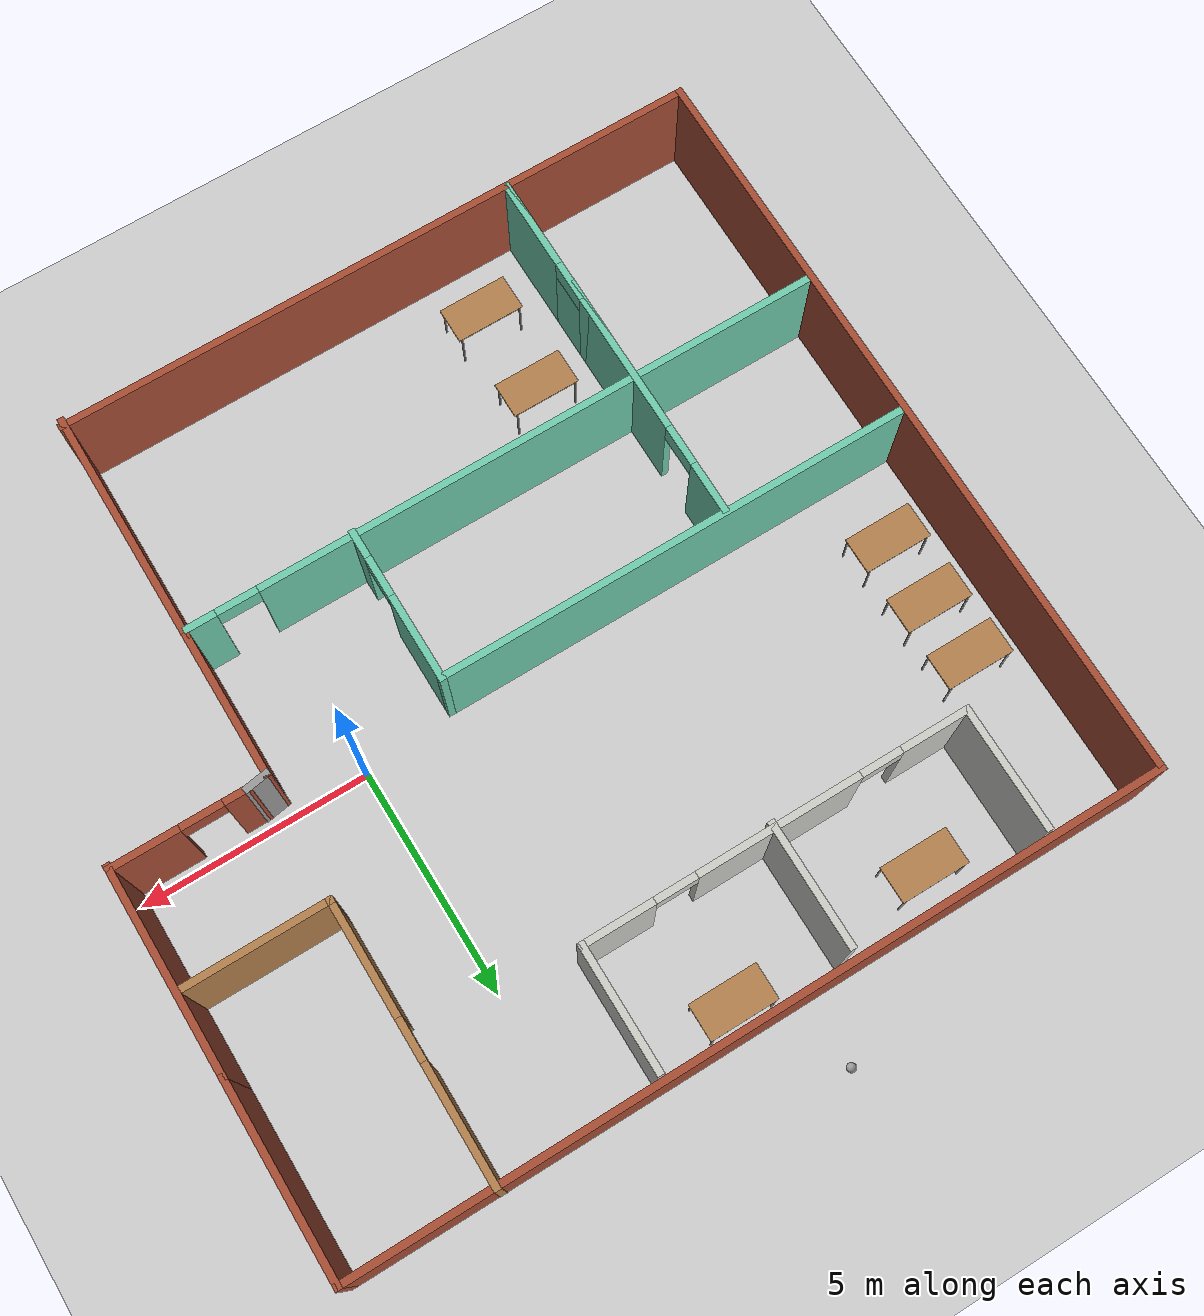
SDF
<sdf version="1.6">
 <world name="default">
  <light name="sun" type="directional">
   <pose>0 0 10 0 -0 0</pose>
   <diffuse>0.8 0.8 0.8 1</diffuse>
   <specular>0.2 0.2 0.2 1</specular>
   <attenuation>
    <range>1000</range>
    <constant>0.9</constant>
    <linear>0.01</linear>
    <quadratic>0.001</quadratic>
   </attenuation>
   <direction>-0.5 0.1 -0.9</direction>
  </light>
  <model name="ground_plane">
   <static>1</static>
   <link name="link">
    <collision name="collision">
     <geometry><plane><normal>0 0 1</normal><size>100 100</size></plane></geometry>
     <surface>
      <contact><collide_bitmask>65535</collide_bitmask></contact>
      <friction><ode><mu>100</mu><mu2>50</mu2></ode></friction>
     </surface>
    </collision>
    <visual name="visual">
     <cast_shadows>0</cast_shadows>
     <geometry><plane><normal>0 0 1</normal><size>100 100</size></plane></geometry>
     <material>
      <script><uri>file://media/materials/scripts/gazebo.material</uri><name>Gazebo/Grey</name></script>
     </material>
    </visual>
   </link>
  </model>
  <gravity>0 0 -9.8</gravity>
  <magnetic_field>6e-06 2.3e-05 -4.2e-05</magnetic_field>
  <atmosphere type="adiabatic"/>
  <physics name="default_physics" default="0" type="ode">
   <max_step_size>0.001</max_step_size>
   <real_time_factor>1</real_time_factor>
   <real_time_update_rate>1000</real_time_update_rate>
  </physics>
  <scene><ambient>0.4 0.4 0.4 1</ambient><background>0.7 0.7 0.7 1</background><shadows>1</shadows></scene>
  <spherical_coordinates>
   <surface_model>EARTH_WGS84</surface_model>
   <latitude_deg>0</latitude_deg>
   <longitude_deg>0</longitude_deg>
   <elevation>0</elevation>
   <heading_deg>0</heading_deg>
  </spherical_coordinates>
  <model name="My_building">
   <pose>-3.765 -0.202616 0 0 -0 0</pose>
   <link name="Wall_0">
    <pose>7.25 -0.08333 0 0 -0 0</pose>
    <visual name="Wall_0_Visual_0">
     <pose>-1.21198 0 1.25 0 -0 0</pose>
     <geometry><box><size>0.57604 0.15 2.5</size></box></geometry>
     <material>
      <script><uri>file://media/materials/scripts/gazebo.material</uri><name>Gazebo/Bricks</name></script>
      <ambient>1 1 1 1</ambient>
     </material>
     <meta><layer>0</layer></meta>
    </visual>
    <collision name="Wall_0_Collision_0">
     <geometry><box><size>0.57604 0.15 2.5</size></box></geometry>
     <pose>-1.21198 0 1.25 0 -0 0</pose>
    </collision>
    <visual name="Wall_0_Visual_1">
     <pose>0.73802 0 1.25 0 -0 0</pose>
     <geometry><box><size>1.52396 0.15 2.5</size></box></geometry>
     <material>
      <script><uri>file://media/materials/scripts/gazebo.material</uri><name>Gazebo/Bricks</name></script>
      <ambient>1 1 1 1</ambient>
     </material>
     <meta><layer>0</layer></meta>
    </visual>
    <collision name="Wall_0_Collision_1">
     <geometry><box><size>1.52396 0.15 2.5</size></box></geometry>
     <pose>0.73802 0 1.25 0 -0 0</pose>
    </collision>
    <visual name="Wall_0_Visual_2">
     <pose>-0.47396 0 2.25 0 -0 0</pose>
     <geometry><box><size>0.9 0.15 0.5</size></box></geometry>
     <material>
      <script><uri>file://media/materials/scripts/gazebo.material</uri><name>Gazebo/Bricks</name></script>
      <ambient>1 1 1 1</ambient>
     </material>
     <meta><layer>0</layer></meta>
    </visual>
    <collision name="Wall_0_Collision_2">
     <geometry><box><size>0.9 0.15 0.5</size></box></geometry>
     <pose>-0.47396 0 2.25 0 -0 0</pose>
    </collision>
   </link>
   <link name="Wall_10">
    <collision name="Wall_10_Collision">
     <geometry><box><size>3.25 0.15 2.5</size></box></geometry>
     <pose>0 0 1.25 0 -0 0</pose>
    </collision>
    <visual name="Wall_10_Visual">
     <pose>0 0 1.25 0 -0 0</pose>
     <geometry><box><size>3.25 0.15 2.5</size></box></geometry>
     <material>
      <script><uri>file://media/materials/scripts/gazebo.material</uri><name>Gazebo/Bricks</name></script>
      <ambient>1 1 1 1</ambient>
     </material>
     <meta><layer>0</layer></meta>
    </visual>
    <pose>5.39586 -1.70043 0 0 -0 1.5708</pose>
   </link>
   <link name="Wall_11">
    <collision name="Wall_11_Collision">
     <geometry><box><size>0.584358 0.15 2.5</size></box></geometry>
     <pose>0 0 1.25 0 -0 0</pose>
    </collision>
    <visual name="Wall_11_Visual">
     <pose>0 0 1.25 0 -0 0</pose>
     <geometry><box><size>0.584358 0.15 2.5</size></box></geometry>
     <material>
      <script><uri>file://media/materials/scripts/gazebo.material</uri><name>Gazebo/Grey</name></script>
      <ambient>1 1 1 1</ambient>
     </material>
     <meta><layer>0</layer></meta>
    </visual>
    <pose>5.61043 -0.116881 0 0 -0 0.155107</pose>
   </link>
   <link name="Wall_13">
    <pose>-1.60533 -3.36158 0 0 -0 0</pose>
    <visual name="Wall_13_Visual_0">
     <pose>-0.790462 0 1.25 0 -0 0</pose>
     <geometry><box><size>12.4191 0.15 2.5</size></box></geometry>
     <material>
      <script><uri>file://media/materials/scripts/gazebo.material</uri><name>Gazebo/Grey</name></script>
      <ambient>0.435294 0.796078 0.67451 1</ambient>
     </material>
     <meta><layer>0</layer></meta>
    </visual>
    <collision name="Wall_13_Collision_0">
     <geometry><box><size>12.4191 0.15 2.5</size></box></geometry>
     <pose>-0.790462 0 1.25 0 -0 0</pose>
    </collision>
    <visual name="Wall_13_Visual_1">
     <pose>6.65954 0 1.25 0 -0 0</pose>
     <geometry><box><size>0.680924 0.15 2.5</size></box></geometry>
     <material>
      <script><uri>file://media/materials/scripts/gazebo.material</uri><name>Gazebo/Grey</name></script>
      <ambient>0.435294 0.796078 0.67451 1</ambient>
     </material>
     <meta><layer>0</layer></meta>
    </visual>
    <collision name="Wall_13_Collision_1">
     <geometry><box><size>0.680924 0.15 2.5</size></box></geometry>
     <pose>6.65954 0 1.25 0 -0 0</pose>
    </collision>
    <visual name="Wall_13_Visual_2">
     <pose>5.86908 0 2.25 0 -0 0</pose>
     <geometry><box><size>0.9 0.15 0.5</size></box></geometry>
     <material>
      <script><uri>file://media/materials/scripts/gazebo.material</uri><name>Gazebo/Grey</name></script>
      <ambient>0.435294 0.796078 0.67451 1</ambient>
     </material>
     <meta><layer>0</layer></meta>
    </visual>
    <collision name="Wall_13_Collision_2">
     <geometry><box><size>0.9 0.15 0.5</size></box></geometry>
     <pose>5.86908 0 2.25 0 -0 0</pose>
    </collision>
   </link>
   <link name="Wall_15">
    <collision name="Wall_15_Collision">
     <geometry><box><size>10.5 0.15 2.5</size></box></geometry>
     <pose>0 0 1.25 0 -0 0</pose>
    </collision>
    <visual name="Wall_15_Visual">
     <pose>0 0 1.25 0 -0 0</pose>
     <geometry><box><size>10.5 0.15 2.5</size></box></geometry>
     <material>
      <script><uri>file://media/materials/scripts/gazebo.material</uri><name>Gazebo/Grey</name></script>
      <ambient>0.435294 0.796078 0.67451 1</ambient>
     </material>
     <meta><layer>0</layer></meta>
    </visual>
    <pose>-3.44837 -0.058384 0 0 -0 0</pose>
   </link>
   <link name="Wall_16">
    <pose>1.72662 -1.73338 0 0 0 -1.5708</pose>
    <visual name="Wall_16_Visual_0">
     <pose>-0.774402 0 1.25 0 -0 0</pose>
     <geometry><box><size>1.9512 0.15 2.5</size></box></geometry>
     <material>
      <script><uri>file://media/materials/scripts/gazebo.material</uri><name>Gazebo/Grey</name></script>
      <ambient>0.435294 0.796078 0.67451 1</ambient>
     </material>
     <meta><layer>0</layer></meta>
    </visual>
    <collision name="Wall_16_Collision_0">
     <geometry><box><size>1.9512 0.15 2.5</size></box></geometry>
     <pose>-0.774402 0 1.25 0 -0 0</pose>
    </collision>
    <visual name="Wall_16_Visual_1">
     <pose>1.4256 0 1.25 0 -0 0</pose>
     <geometry><box><size>0.648804 0.15 2.5</size></box></geometry>
     <material>
      <script><uri>file://media/materials/scripts/gazebo.material</uri><name>Gazebo/Grey</name></script>
      <ambient>0.435294 0.796078 0.67451 1</ambient>
     </material>
     <meta><layer>0</layer></meta>
    </visual>
    <collision name="Wall_16_Collision_1">
     <geometry><box><size>0.648804 0.15 2.5</size></box></geometry>
     <pose>1.4256 0 1.25 0 -0 0</pose>
    </collision>
    <visual name="Wall_16_Visual_2">
     <pose>0.651196 0 2.25 0 -0 0</pose>
     <geometry><box><size>0.9 0.15 0.5</size></box></geometry>
     <material>
      <script><uri>file://media/materials/scripts/gazebo.material</uri><name>Gazebo/Grey</name></script>
      <ambient>0.435294 0.796078 0.67451 1</ambient>
     </material>
     <meta><layer>0</layer></meta>
    </visual>
    <collision name="Wall_16_Collision_2">
     <geometry><box><size>0.9 0.15 0.5</size></box></geometry>
     <pose>0.651196 0 2.25 0 -0 0</pose>
    </collision>
   </link>
   <link name="Wall_18">
    <collision name="Wall_18_Collision">
     <geometry><box><size>3.25 0.15 2.5</size></box></geometry>
     <pose>0 0 1.25 0 -0 0</pose>
    </collision>
    <visual name="Wall_18_Visual">
     <pose>0 0 1.25 0 -0 0</pose>
     <geometry><box><size>3.25 0.15 2.5</size></box></geometry>
     <material>
      <script><uri>file://media/materials/scripts/gazebo.material</uri><name>Gazebo/Wood</name></script>
      <ambient>0.435294 0.796078 0.67451 1</ambient>
     </material>
     <meta><layer>0</layer></meta>
    </visual>
    <pose>7.087 2.50043 0 0 -0 3.14159</pose>
   </link>
   <link name="Wall_19">
    <pose>5.537 5.42543 0 0 -0 1.5708</pose>
    <visual name="Wall_19_Visual_0">
     <pose>-1.73631 0 1.25 0 -0 0</pose>
     <geometry><box><size>2.52738 0.15 2.5</size></box></geometry>
     <material>
      <script><uri>file://media/materials/scripts/gazebo.material</uri><name>Gazebo/Wood</name></script>
      <ambient>0.435294 0.796078 0.67451 1</ambient>
     </material>
     <meta><layer>0</layer></meta>
    </visual>
    <collision name="Wall_19_Collision_0">
     <geometry><box><size>2.52738 0.15 2.5</size></box></geometry>
     <pose>-1.73631 0 1.25 0 -0 0</pose>
    </collision>
    <visual name="Wall_19_Visual_1">
     <pose>1.71369 0 1.25 0 -0 0</pose>
     <geometry><box><size>2.57262 0.15 2.5</size></box></geometry>
     <material>
      <script><uri>file://media/materials/scripts/gazebo.material</uri><name>Gazebo/Wood</name></script>
      <ambient>0.435294 0.796078 0.67451 1</ambient>
     </material>
     <meta><layer>0</layer></meta>
    </visual>
    <collision name="Wall_19_Collision_1">
     <geometry><box><size>2.57262 0.15 2.5</size></box></geometry>
     <pose>1.71369 0 1.25 0 -0 0</pose>
    </collision>
    <visual name="Wall_19_Visual_2">
     <pose>-0.022624 0 2.25 0 -0 0</pose>
     <geometry><box><size>0.9 0.15 0.5</size></box></geometry>
     <material>
      <script><uri>file://media/materials/scripts/gazebo.material</uri><name>Gazebo/Wood</name></script>
      <ambient>0.435294 0.796078 0.67451 1</ambient>
     </material>
     <meta><layer>0</layer></meta>
    </visual>
    <collision name="Wall_19_Collision_2">
     <geometry><box><size>0.9 0.15 0.5</size></box></geometry>
     <pose>-0.022624 0 2.25 0 -0 0</pose>
    </collision>
   </link>
   <link name="Wall_2">
    <collision name="Wall_2_Collision">
     <geometry><box><size>4.52247 0.15 2.5</size></box></geometry>
     <pose>0 0 1.25 0 -0 0</pose>
    </collision>
    <visual name="Wall_2_Visual">
     <pose>0 0 1.25 0 -0 0</pose>
     <geometry><box><size>4.52247 0.15 2.5</size></box></geometry>
     <material>
      <script><uri>file://media/materials/scripts/gazebo.material</uri><name>Gazebo/Bricks</name></script>
      <ambient>0.435294 0.796078 0.67451 1</ambient>
     </material>
     <meta><layer>0</layer></meta>
    </visual>
    <pose>8.675 2.05638 0 0 -0 1.5708</pose>
   </link>
   <link name="Wall_22">
    <collision name="Wall_22_Collision">
     <geometry><box><size>2.75 0.15 2.5</size></box></geometry>
     <pose>0 0 1.25 0 -0 0</pose>
    </collision>
    <visual name="Wall_22_Visual">
     <pose>0 0 1.25 0 -0 0</pose>
     <geometry><box><size>2.75 0.15 2.5</size></box></geometry>
     <material>
      <script><uri>file://media/materials/scripts/gazebo.material</uri><name>Gazebo/CeilingTiled</name></script>
      <ambient>1 1 1 1</ambient>
     </material>
     <meta><layer>0</layer></meta>
    </visual>
    <pose>-6.25504 6.86233 0 0 0 -1.5708</pose>
   </link>
   <link name="Wall_23">
    <pose>-2.08004 5.56233 0 0 -0 0</pose>
    <visual name="Wall_23_Visual_0">
     <pose>-3.48228 0 1.25 0 -0 0</pose>
     <geometry><box><size>1.53544 0.15 2.5</size></box></geometry>
     <material>
      <script><uri>file://media/materials/scripts/gazebo.material</uri><name>Gazebo/CeilingTiled</name></script>
      <ambient>1 1 1 1</ambient>
     </material>
     <meta><layer>0</layer></meta>
    </visual>
    <collision name="Wall_23_Collision_0">
     <geometry><box><size>1.53544 0.15 2.5</size></box></geometry>
     <pose>-3.48228 0 1.25 0 -0 0</pose>
    </collision>
    <visual name="Wall_23_Visual_1">
     <pose>-0.035712 0 1.25 0 -0 0</pose>
     <geometry><box><size>3.55769 0.15 2.5</size></box></geometry>
     <material>
      <script><uri>file://media/materials/scripts/gazebo.material</uri><name>Gazebo/CeilingTiled</name></script>
      <ambient>1 1 1 1</ambient>
     </material>
     <meta><layer>0</layer></meta>
    </visual>
    <collision name="Wall_23_Collision_1">
     <geometry><box><size>3.55769 0.15 2.5</size></box></geometry>
     <pose>-0.035712 0 1.25 0 -0 0</pose>
    </collision>
    <visual name="Wall_23_Visual_2">
     <pose>3.44657 0 1.25 0 -0 0</pose>
     <geometry><box><size>1.60686 0.15 2.5</size></box></geometry>
     <material>
      <script><uri>file://media/materials/scripts/gazebo.material</uri><name>Gazebo/CeilingTiled</name></script>
      <ambient>1 1 1 1</ambient>
     </material>
     <meta><layer>0</layer></meta>
    </visual>
    <collision name="Wall_23_Collision_2">
     <geometry><box><size>1.60686 0.15 2.5</size></box></geometry>
     <pose>3.44657 0 1.25 0 -0 0</pose>
    </collision>
    <visual name="Wall_23_Visual_3">
     <pose>-2.26456 0 2.25 0 -0 0</pose>
     <geometry><box><size>0.9 0.15 0.5</size></box></geometry>
     <material>
      <script><uri>file://media/materials/scripts/gazebo.material</uri><name>Gazebo/CeilingTiled</name></script>
      <ambient>1 1 1 1</ambient>
     </material>
     <meta><layer>0</layer></meta>
    </visual>
    <collision name="Wall_23_Collision_3">
     <geometry><box><size>0.9 0.15 0.5</size></box></geometry>
     <pose>-2.26456 0 2.25 0 -0 0</pose>
    </collision>
    <visual name="Wall_23_Visual_4">
     <pose>2.19313 0 2.25 0 -0 0</pose>
     <geometry><box><size>0.9 0.15 0.5</size></box></geometry>
     <material>
      <script><uri>file://media/materials/scripts/gazebo.material</uri><name>Gazebo/CeilingTiled</name></script>
      <ambient>1 1 1 1</ambient>
     </material>
     <meta><layer>0</layer></meta>
    </visual>
    <collision name="Wall_23_Collision_4">
     <geometry><box><size>0.9 0.15 0.5</size></box></geometry>
     <pose>2.19313 0 2.25 0 -0 0</pose>
    </collision>
   </link>
   <link name="Wall_24">
    <collision name="Wall_24_Collision">
     <geometry><box><size>2.75 0.15 2.5</size></box></geometry>
     <pose>0 0 1.25 0 -0 0</pose>
    </collision>
    <visual name="Wall_24_Visual">
     <pose>0 0 1.25 0 -0 0</pose>
     <geometry><box><size>2.75 0.15 2.5</size></box></geometry>
     <material>
      <script><uri>file://media/materials/scripts/gazebo.material</uri><name>Gazebo/CeilingTiled</name></script>
      <ambient>1 1 1 1</ambient>
     </material>
     <meta><layer>0</layer></meta>
    </visual>
    <pose>2.09496 6.86233 0 0 -0 1.5708</pose>
   </link>
   <link name="Wall_26">
    <collision name="Wall_26_Collision">
     <geometry><box><size>2.75 0.15 2.5</size></box></geometry>
     <pose>0 0 1.25 0 -0 0</pose>
    </collision>
    <visual name="Wall_26_Visual">
     <pose>0 0 1.25 0 -0 0</pose>
     <geometry><box><size>2.75 0.15 2.5</size></box></geometry>
     <material>
      <script><uri>file://media/materials/scripts/gazebo.material</uri><name>Gazebo/CeilingTiled</name></script>
      <ambient>1 1 1 1</ambient>
     </material>
     <meta><layer>0</layer></meta>
    </visual>
    <pose>-2.00962 6.79158 0 0 0 -1.5708</pose>
   </link>
   <link name="Wall_28">
    <collision name="Wall_28_Collision">
     <geometry><box><size>5 0.15 2.5</size></box></geometry>
     <pose>0 0 1.25 0 -0 0</pose>
    </collision>
    <visual name="Wall_28_Visual">
     <pose>0 0 1.25 0 -0 0</pose>
     <geometry><box><size>5 0.15 2.5</size></box></geometry>
     <material>
      <script><uri>file://media/materials/scripts/gazebo.material</uri><name>Gazebo/Grey</name></script>
      <ambient>0.435294 0.796078 0.67451 1</ambient>
     </material>
     <meta><layer>0</layer></meta>
    </visual>
    <pose>-4.55687 -5.79607 0 0 0 -1.5708</pose>
   </link>
   <link name="Wall_29">
    <pose>-4.55687 -4.17107 0 0 -0 1.5708</pose>
    <visual name="Wall_29_Visual_0">
     <pose>-3.09037 0 1.25 0 -0 0</pose>
     <geometry><box><size>2.06926 0.15 2.5</size></box></geometry>
     <material>
      <script><uri>file://media/materials/scripts/gazebo.material</uri><name>Gazebo/Grey</name></script>
      <ambient>0.435294 0.796078 0.67451 1</ambient>
     </material>
     <meta><layer>0</layer></meta>
    </visual>
    <collision name="Wall_29_Collision_0">
     <geometry><box><size>2.06926 0.15 2.5</size></box></geometry>
     <pose>-3.09037 0 1.25 0 -0 0</pose>
    </collision>
    <visual name="Wall_29_Visual_1">
     <pose>0.446215 0 1.25 0 -0 0</pose>
     <geometry><box><size>3.20391 0.15 2.5</size></box></geometry>
     <material>
      <script><uri>file://media/materials/scripts/gazebo.material</uri><name>Gazebo/Grey</name></script>
      <ambient>0.435294 0.796078 0.67451 1</ambient>
     </material>
     <meta><layer>0</layer></meta>
    </visual>
    <collision name="Wall_29_Collision_1">
     <geometry><box><size>3.20391 0.15 2.5</size></box></geometry>
     <pose>0.446215 0 1.25 0 -0 0</pose>
    </collision>
    <visual name="Wall_29_Visual_2">
     <pose>3.53659 0 1.25 0 -0 0</pose>
     <geometry><box><size>1.17683 0.15 2.5</size></box></geometry>
     <material>
      <script><uri>file://media/materials/scripts/gazebo.material</uri><name>Gazebo/Grey</name></script>
      <ambient>0.435294 0.796078 0.67451 1</ambient>
     </material>
     <meta><layer>0</layer></meta>
    </visual>
    <collision name="Wall_29_Collision_2">
     <geometry><box><size>1.17683 0.15 2.5</size></box></geometry>
     <pose>3.53659 0 1.25 0 -0 0</pose>
    </collision>
    <visual name="Wall_29_Visual_3">
     <pose>-1.60574 0 2.25 0 -0 0</pose>
     <geometry><box><size>0.9 0.15 0.5</size></box></geometry>
     <material>
      <script><uri>file://media/materials/scripts/gazebo.material</uri><name>Gazebo/Grey</name></script>
      <ambient>0.435294 0.796078 0.67451 1</ambient>
     </material>
     <meta><layer>0</layer></meta>
    </visual>
    <collision name="Wall_29_Collision_3">
     <geometry><box><size>0.9 0.15 0.5</size></box></geometry>
     <pose>-1.60574 0 2.25 0 -0 0</pose>
    </collision>
    <visual name="Wall_29_Visual_4">
     <pose>2.49817 0 2.25 0 -0 0</pose>
     <geometry><box><size>0.9 0.15 0.5</size></box></geometry>
     <material>
      <script><uri>file://media/materials/scripts/gazebo.material</uri><name>Gazebo/Grey</name></script>
      <ambient>0.435294 0.796078 0.67451 1</ambient>
     </material>
     <meta><layer>0</layer></meta>
    </visual>
    <collision name="Wall_29_Collision_4">
     <geometry><box><size>0.9 0.15 0.5</size></box></geometry>
     <pose>2.49817 0 2.25 0 -0 0</pose>
    </collision>
   </link>
   <link name="Wall_3">
    <collision name="Wall_3_Collision">
     <geometry><box><size>4.25 0.15 2.5</size></box></geometry>
     <pose>0 0 1.25 0 -0 0</pose>
    </collision>
    <visual name="Wall_3_Visual">
     <pose>0 0 1.25 0 -0 0</pose>
     <geometry><box><size>4.25 0.15 2.5</size></box></geometry>
     <material>
      <script><uri>file://media/materials/scripts/gazebo.material</uri><name>Gazebo/Bricks</name></script>
      <ambient>1 1 1 1</ambient>
     </material>
     <meta><layer>0</layer></meta>
    </visual>
    <pose>8.675 6.29262 0 0 -0 1.5708</pose>
   </link>
   <link name="Wall_4">
    <collision name="Wall_4_Collision">
     <geometry><box><size>17.5 0.15 2.5</size></box></geometry>
     <pose>0 0 1.25 0 -0 0</pose>
    </collision>
    <visual name="Wall_4_Visual">
     <pose>0 0 1.25 0 -0 0</pose>
     <geometry><box><size>17.5 0.15 2.5</size></box></geometry>
     <material>
      <script><uri>file://media/materials/scripts/gazebo.material</uri><name>Gazebo/Bricks</name></script>
      <ambient>1 1 1 1</ambient>
     </material>
     <meta><layer>0</layer></meta>
    </visual>
    <pose>0 8.34262 0 0 -0 3.14159</pose>
   </link>
   <link name="Wall_5">
    <collision name="Wall_5_Collision">
     <geometry><box><size>16.75 0.15 2.5</size></box></geometry>
     <pose>0 0 1.25 0 -0 0</pose>
    </collision>
    <visual name="Wall_5_Visual">
     <pose>0 0 1.25 0 -0 0</pose>
     <geometry><box><size>16.75 0.15 2.5</size></box></geometry>
     <material>
      <script><uri>file://media/materials/scripts/gazebo.material</uri><name>Gazebo/Bricks</name></script>
      <ambient>1 1 1 1</ambient>
     </material>
     <meta><layer>0</layer></meta>
    </visual>
    <pose>-8.675 0.042616 0 0 0 -1.5708</pose>
   </link>
   <link name="Wall_6">
    <collision name="Wall_6_Collision">
     <geometry><box><size>14.2674 0.15 2.5</size></box></geometry>
     <pose>0 0 1.25 0 -0 0</pose>
    </collision>
    <visual name="Wall_6_Visual">
     <pose>0 0 1.25 0 -0 0</pose>
     <geometry><box><size>14.2674 0.15 2.5</size></box></geometry>
     <material>
      <script><uri>file://media/materials/scripts/gazebo.material</uri><name>Gazebo/Bricks</name></script>
      <ambient>1 1 1 1</ambient>
     </material>
     <meta><layer>0</layer></meta>
    </visual>
    <pose>-1.61631 -8.25738 0 0 -0 0</pose>
   </link>
   <link name="Wall_7">
    <collision name="Wall_7_Collision">
     <geometry><box><size>5.25 0.15 2.5</size></box></geometry>
     <pose>0 0 1.25 0 -0 0</pose>
    </collision>
    <visual name="Wall_7_Visual">
     <pose>0 0 1.25 0 -0 0</pose>
     <geometry><box><size>5.25 0.15 2.5</size></box></geometry>
     <material>
      <script><uri>file://media/materials/scripts/gazebo.material</uri><name>Gazebo/Bricks</name></script>
      <ambient>1 1 1 1</ambient>
     </material>
     <meta><layer>0</layer></meta>
    </visual>
    <pose>5.39586 -5.80043 0 0 -0 1.5708</pose>
   </link>
   <static>1</static>
  </model>
  <model name="table">
   <static>1</static>
   <link name="link">
    <collision name="surface">
     <pose>0 0 1 0 -0 0</pose>
     <geometry><box><size>1.5 0.8 0.03</size></box></geometry>
     <surface><friction><ode><mu>0.6</mu><mu2>0.6</mu2></ode></friction></surface>
    </collision>
    <visual name="visual1">
     <pose>0 0 1 0 -0 0</pose>
     <geometry><box><size>1.5 0.8 0.03</size></box></geometry>
     <material>
      <script><uri>file://media/materials/scripts/gazebo.material</uri><name>Gazebo/Wood</name></script>
     </material>
    </visual>
    <collision name="front_left_leg">
     <pose>0.68 0.38 0.5 0 -0 0</pose>
     <geometry><cylinder><radius>0.02</radius><length>1</length></cylinder></geometry>
    </collision>
    <visual name="front_left_leg">
     <pose>0.68 0.38 0.5 0 -0 0</pose>
     <geometry><cylinder><radius>0.02</radius><length>1</length></cylinder></geometry>
     <material>
      <script><uri>file://media/materials/scripts/gazebo.material</uri><name>Gazebo/Grey</name></script>
     </material>
    </visual>
    <collision name="front_right_leg">
     <pose>0.68 -0.38 0.5 0 -0 0</pose>
     <geometry><cylinder><radius>0.02</radius><length>1</length></cylinder></geometry>
    </collision>
    <visual name="front_right_leg">
     <pose>0.68 -0.38 0.5 0 -0 0</pose>
     <geometry><cylinder><radius>0.02</radius><length>1</length></cylinder></geometry>
     <material>
      <script><uri>file://media/materials/scripts/gazebo.material</uri><name>Gazebo/Grey</name></script>
     </material>
    </visual>
    <collision name="back_right_leg">
     <pose>-0.68 -0.38 0.5 0 -0 0</pose>
     <geometry><cylinder><radius>0.02</radius><length>1</length></cylinder></geometry>
    </collision>
    <visual name="back_right_leg">
     <pose>-0.68 -0.38 0.5 0 -0 0</pose>
     <geometry><cylinder><radius>0.02</radius><length>1</length></cylinder></geometry>
     <material>
      <script><uri>file://media/materials/scripts/gazebo.material</uri><name>Gazebo/Grey</name></script>
     </material>
    </visual>
    <collision name="back_left_leg">
     <pose>-0.68 0.38 0.5 0 -0 0</pose>
     <geometry><cylinder><radius>0.02</radius><length>1</length></cylinder></geometry>
    </collision>
    <visual name="back_left_leg">
     <pose>-0.68 0.38 0.5 0 -0 0</pose>
     <geometry><cylinder><radius>0.02</radius><length>1</length></cylinder></geometry>
     <material>
      <script><uri>file://media/materials/scripts/gazebo.material</uri><name>Gazebo/Grey</name></script>
     </material>
    </visual>
   </link>
   <pose>-6.81269 -7.0565 0 0 -0 0</pose>
  </model>
  <model name="table_0">
   <static>1</static>
   <link name="link">
    <collision name="surface">
     <pose>0 0 1 0 -0 0</pose>
     <geometry><box><size>1.5 0.8 0.03</size></box></geometry>
     <surface><friction><ode><mu>0.6</mu><mu2>0.6</mu2></ode></friction></surface>
    </collision>
    <visual name="visual1">
     <pose>0 0 1 0 -0 0</pose>
     <geometry><box><size>1.5 0.8 0.03</size></box></geometry>
     <material>
      <script><uri>file://media/materials/scripts/gazebo.material</uri><name>Gazebo/Wood</name></script>
     </material>
    </visual>
    <collision name="front_left_leg">
     <pose>0.68 0.38 0.5 0 -0 0</pose>
     <geometry><cylinder><radius>0.02</radius><length>1</length></cylinder></geometry>
    </collision>
    <visual name="front_left_leg">
     <pose>0.68 0.38 0.5 0 -0 0</pose>
     <geometry><cylinder><radius>0.02</radius><length>1</length></cylinder></geometry>
     <material>
      <script><uri>file://media/materials/scripts/gazebo.material</uri><name>Gazebo/Grey</name></script>
     </material>
    </visual>
    <collision name="front_right_leg">
     <pose>0.68 -0.38 0.5 0 -0 0</pose>
     <geometry><cylinder><radius>0.02</radius><length>1</length></cylinder></geometry>
    </collision>
    <visual name="front_right_leg">
     <pose>0.68 -0.38 0.5 0 -0 0</pose>
     <geometry><cylinder><radius>0.02</radius><length>1</length></cylinder></geometry>
     <material>
      <script><uri>file://media/materials/scripts/gazebo.material</uri><name>Gazebo/Grey</name></script>
     </material>
    </visual>
    <collision name="back_right_leg">
     <pose>-0.68 -0.38 0.5 0 -0 0</pose>
     <geometry><cylinder><radius>0.02</radius><length>1</length></cylinder></geometry>
    </collision>
    <visual name="back_right_leg">
     <pose>-0.68 -0.38 0.5 0 -0 0</pose>
     <geometry><cylinder><radius>0.02</radius><length>1</length></cylinder></geometry>
     <material>
      <script><uri>file://media/materials/scripts/gazebo.material</uri><name>Gazebo/Grey</name></script>
     </material>
    </visual>
    <collision name="back_left_leg">
     <pose>-0.68 0.38 0.5 0 -0 0</pose>
     <geometry><cylinder><radius>0.02</radius><length>1</length></cylinder></geometry>
    </collision>
    <visual name="back_left_leg">
     <pose>-0.68 0.38 0.5 0 -0 0</pose>
     <geometry><cylinder><radius>0.02</radius><length>1</length></cylinder></geometry>
     <material>
      <script><uri>file://media/materials/scripts/gazebo.material</uri><name>Gazebo/Grey</name></script>
     </material>
    </visual>
   </link>
   <pose>-6.92484 -5.04364 0 0 -0 0</pose>
  </model>
  <model name="table_1">
   <static>1</static>
   <link name="link">
    <collision name="surface">
     <pose>0 0 1 0 -0 0</pose>
     <geometry><box><size>1.5 0.8 0.03</size></box></geometry>
     <surface><friction><ode><mu>0.6</mu><mu2>0.6</mu2></ode></friction></surface>
    </collision>
    <visual name="visual1">
     <pose>0 0 1 0 -0 0</pose>
     <geometry><box><size>1.5 0.8 0.03</size></box></geometry>
     <material>
      <script><uri>file://media/materials/scripts/gazebo.material</uri><name>Gazebo/Wood</name></script>
     </material>
    </visual>
    <collision name="front_left_leg">
     <pose>0.68 0.38 0.5 0 -0 0</pose>
     <geometry><cylinder><radius>0.02</radius><length>1</length></cylinder></geometry>
    </collision>
    <visual name="front_left_leg">
     <pose>0.68 0.38 0.5 0 -0 0</pose>
     <geometry><cylinder><radius>0.02</radius><length>1</length></cylinder></geometry>
     <material>
      <script><uri>file://media/materials/scripts/gazebo.material</uri><name>Gazebo/Grey</name></script>
     </material>
    </visual>
    <collision name="front_right_leg">
     <pose>0.68 -0.38 0.5 0 -0 0</pose>
     <geometry><cylinder><radius>0.02</radius><length>1</length></cylinder></geometry>
    </collision>
    <visual name="front_right_leg">
     <pose>0.68 -0.38 0.5 0 -0 0</pose>
     <geometry><cylinder><radius>0.02</radius><length>1</length></cylinder></geometry>
     <material>
      <script><uri>file://media/materials/scripts/gazebo.material</uri><name>Gazebo/Grey</name></script>
     </material>
    </visual>
    <collision name="back_right_leg">
     <pose>-0.68 -0.38 0.5 0 -0 0</pose>
     <geometry><cylinder><radius>0.02</radius><length>1</length></cylinder></geometry>
    </collision>
    <visual name="back_right_leg">
     <pose>-0.68 -0.38 0.5 0 -0 0</pose>
     <geometry><cylinder><radius>0.02</radius><length>1</length></cylinder></geometry>
     <material>
      <script><uri>file://media/materials/scripts/gazebo.material</uri><name>Gazebo/Grey</name></script>
     </material>
    </visual>
    <collision name="back_left_leg">
     <pose>-0.68 0.38 0.5 0 -0 0</pose>
     <geometry><cylinder><radius>0.02</radius><length>1</length></cylinder></geometry>
    </collision>
    <visual name="back_left_leg">
     <pose>-0.68 0.38 0.5 0 -0 0</pose>
     <geometry><cylinder><radius>0.02</radius><length>1</length></cylinder></geometry>
     <material>
      <script><uri>file://media/materials/scripts/gazebo.material</uri><name>Gazebo/Grey</name></script>
     </material>
    </visual>
   </link>
   <pose>-8.06151 7.2534 0 0 -0 0</pose>
  </model>
  <model name="table_2">
   <static>1</static>
   <link name="link">
    <collision name="surface">
     <pose>0 0 1 0 -0 0</pose>
     <geometry><box><size>1.5 0.8 0.03</size></box></geometry>
     <surface><friction><ode><mu>0.6</mu><mu2>0.6</mu2></ode></friction></surface>
    </collision>
    <visual name="visual1">
     <pose>0 0 1 0 -0 0</pose>
     <geometry><box><size>1.5 0.8 0.03</size></box></geometry>
     <material>
      <script><uri>file://media/materials/scripts/gazebo.material</uri><name>Gazebo/Wood</name></script>
     </material>
    </visual>
    <collision name="front_left_leg">
     <pose>0.68 0.38 0.5 0 -0 0</pose>
     <geometry><cylinder><radius>0.02</radius><length>1</length></cylinder></geometry>
    </collision>
    <visual name="front_left_leg">
     <pose>0.68 0.38 0.5 0 -0 0</pose>
     <geometry><cylinder><radius>0.02</radius><length>1</length></cylinder></geometry>
     <material>
      <script><uri>file://media/materials/scripts/gazebo.material</uri><name>Gazebo/Grey</name></script>
     </material>
    </visual>
    <collision name="front_right_leg">
     <pose>0.68 -0.38 0.5 0 -0 0</pose>
     <geometry><cylinder><radius>0.02</radius><length>1</length></cylinder></geometry>
    </collision>
    <visual name="front_right_leg">
     <pose>0.68 -0.38 0.5 0 -0 0</pose>
     <geometry><cylinder><radius>0.02</radius><length>1</length></cylinder></geometry>
     <material>
      <script><uri>file://media/materials/scripts/gazebo.material</uri><name>Gazebo/Grey</name></script>
     </material>
    </visual>
    <collision name="back_right_leg">
     <pose>-0.68 -0.38 0.5 0 -0 0</pose>
     <geometry><cylinder><radius>0.02</radius><length>1</length></cylinder></geometry>
    </collision>
    <visual name="back_right_leg">
     <pose>-0.68 -0.38 0.5 0 -0 0</pose>
     <geometry><cylinder><radius>0.02</radius><length>1</length></cylinder></geometry>
     <material>
      <script><uri>file://media/materials/scripts/gazebo.material</uri><name>Gazebo/Grey</name></script>
     </material>
    </visual>
    <collision name="back_left_leg">
     <pose>-0.68 0.38 0.5 0 -0 0</pose>
     <geometry><cylinder><radius>0.02</radius><length>1</length></cylinder></geometry>
    </collision>
    <visual name="back_left_leg">
     <pose>-0.68 0.38 0.5 0 -0 0</pose>
     <geometry><cylinder><radius>0.02</radius><length>1</length></cylinder></geometry>
     <material>
      <script><uri>file://media/materials/scripts/gazebo.material</uri><name>Gazebo/Grey</name></script>
     </material>
    </visual>
   </link>
   <pose>-3.61678 7.52536 0 0 -0 0</pose>
  </model>
  <model name="table_3">
   <static>1</static>
   <link name="link">
    <collision name="surface">
     <pose>0 0 1 0 -0 0</pose>
     <geometry><box><size>1.5 0.8 0.03</size></box></geometry>
     <surface><friction><ode><mu>0.6</mu><mu2>0.6</mu2></ode></friction></surface>
    </collision>
    <visual name="visual1">
     <pose>0 0 1 0 -0 0</pose>
     <geometry><box><size>1.5 0.8 0.03</size></box></geometry>
     <material>
      <script><uri>file://media/materials/scripts/gazebo.material</uri><name>Gazebo/Wood</name></script>
     </material>
    </visual>
    <collision name="front_left_leg">
     <pose>0.68 0.38 0.5 0 -0 0</pose>
     <geometry><cylinder><radius>0.02</radius><length>1</length></cylinder></geometry>
    </collision>
    <visual name="front_left_leg">
     <pose>0.68 0.38 0.5 0 -0 0</pose>
     <geometry><cylinder><radius>0.02</radius><length>1</length></cylinder></geometry>
     <material>
      <script><uri>file://media/materials/scripts/gazebo.material</uri><name>Gazebo/Grey</name></script>
     </material>
    </visual>
    <collision name="front_right_leg">
     <pose>0.68 -0.38 0.5 0 -0 0</pose>
     <geometry><cylinder><radius>0.02</radius><length>1</length></cylinder></geometry>
    </collision>
    <visual name="front_right_leg">
     <pose>0.68 -0.38 0.5 0 -0 0</pose>
     <geometry><cylinder><radius>0.02</radius><length>1</length></cylinder></geometry>
     <material>
      <script><uri>file://media/materials/scripts/gazebo.material</uri><name>Gazebo/Grey</name></script>
     </material>
    </visual>
    <collision name="back_right_leg">
     <pose>-0.68 -0.38 0.5 0 -0 0</pose>
     <geometry><cylinder><radius>0.02</radius><length>1</length></cylinder></geometry>
    </collision>
    <visual name="back_right_leg">
     <pose>-0.68 -0.38 0.5 0 -0 0</pose>
     <geometry><cylinder><radius>0.02</radius><length>1</length></cylinder></geometry>
     <material>
      <script><uri>file://media/materials/scripts/gazebo.material</uri><name>Gazebo/Grey</name></script>
     </material>
    </visual>
    <collision name="back_left_leg">
     <pose>-0.68 0.38 0.5 0 -0 0</pose>
     <geometry><cylinder><radius>0.02</radius><length>1</length></cylinder></geometry>
    </collision>
    <visual name="back_left_leg">
     <pose>-0.68 0.38 0.5 0 -0 0</pose>
     <geometry><cylinder><radius>0.02</radius><length>1</length></cylinder></geometry>
     <material>
      <script><uri>file://media/materials/scripts/gazebo.material</uri><name>Gazebo/Grey</name></script>
     </material>
    </visual>
   </link>
   <pose>-11.161 4.26911 0 0 -0 0</pose>
  </model>
  <model name="table_4">
   <static>1</static>
   <link name="link">
    <collision name="surface">
     <pose>0 0 1 0 -0 0</pose>
     <geometry><box><size>1.5 0.8 0.03</size></box></geometry>
     <surface><friction><ode><mu>0.6</mu><mu2>0.6</mu2></ode></friction></surface>
    </collision>
    <visual name="visual1">
     <pose>0 0 1 0 -0 0</pose>
     <geometry><box><size>1.5 0.8 0.03</size></box></geometry>
     <material>
      <script><uri>file://media/materials/scripts/gazebo.material</uri><name>Gazebo/Wood</name></script>
     </material>
    </visual>
    <collision name="front_left_leg">
     <pose>0.68 0.38 0.5 0 -0 0</pose>
     <geometry><cylinder><radius>0.02</radius><length>1</length></cylinder></geometry>
    </collision>
    <visual name="front_left_leg">
     <pose>0.68 0.38 0.5 0 -0 0</pose>
     <geometry><cylinder><radius>0.02</radius><length>1</length></cylinder></geometry>
     <material>
      <script><uri>file://media/materials/scripts/gazebo.material</uri><name>Gazebo/Grey</name></script>
     </material>
    </visual>
    <collision name="front_right_leg">
     <pose>0.68 -0.38 0.5 0 -0 0</pose>
     <geometry><cylinder><radius>0.02</radius><length>1</length></cylinder></geometry>
    </collision>
    <visual name="front_right_leg">
     <pose>0.68 -0.38 0.5 0 -0 0</pose>
     <geometry><cylinder><radius>0.02</radius><length>1</length></cylinder></geometry>
     <material>
      <script><uri>file://media/materials/scripts/gazebo.material</uri><name>Gazebo/Grey</name></script>
     </material>
    </visual>
    <collision name="back_right_leg">
     <pose>-0.68 -0.38 0.5 0 -0 0</pose>
     <geometry><cylinder><radius>0.02</radius><length>1</length></cylinder></geometry>
    </collision>
    <visual name="back_right_leg">
     <pose>-0.68 -0.38 0.5 0 -0 0</pose>
     <geometry><cylinder><radius>0.02</radius><length>1</length></cylinder></geometry>
     <material>
      <script><uri>file://media/materials/scripts/gazebo.material</uri><name>Gazebo/Grey</name></script>
     </material>
    </visual>
    <collision name="back_left_leg">
     <pose>-0.68 0.38 0.5 0 -0 0</pose>
     <geometry><cylinder><radius>0.02</radius><length>1</length></cylinder></geometry>
    </collision>
    <visual name="back_left_leg">
     <pose>-0.68 0.38 0.5 0 -0 0</pose>
     <geometry><cylinder><radius>0.02</radius><length>1</length></cylinder></geometry>
     <material>
      <script><uri>file://media/materials/scripts/gazebo.material</uri><name>Gazebo/Grey</name></script>
     </material>
    </visual>
   </link>
   <pose>-11.1341 2.90634 0 0 -0 0</pose>
  </model>
  <model name="table_5">
   <static>1</static>
   <link name="link">
    <collision name="surface">
     <pose>0 0 1 0 -0 0</pose>
     <geometry><box><size>1.5 0.8 0.03</size></box></geometry>
     <surface><friction><ode><mu>0.6</mu><mu2>0.6</mu2></ode></friction></surface>
    </collision>
    <visual name="visual1">
     <pose>0 0 1 0 -0 0</pose>
     <geometry><box><size>1.5 0.8 0.03</size></box></geometry>
     <material>
      <script><uri>file://media/materials/scripts/gazebo.material</uri><name>Gazebo/Wood</name></script>
     </material>
    </visual>
    <collision name="front_left_leg">
     <pose>0.68 0.38 0.5 0 -0 0</pose>
     <geometry><cylinder><radius>0.02</radius><length>1</length></cylinder></geometry>
    </collision>
    <visual name="front_left_leg">
     <pose>0.68 0.38 0.5 0 -0 0</pose>
     <geometry><cylinder><radius>0.02</radius><length>1</length></cylinder></geometry>
     <material>
      <script><uri>file://media/materials/scripts/gazebo.material</uri><name>Gazebo/Grey</name></script>
     </material>
    </visual>
    <collision name="front_right_leg">
     <pose>0.68 -0.38 0.5 0 -0 0</pose>
     <geometry><cylinder><radius>0.02</radius><length>1</length></cylinder></geometry>
    </collision>
    <visual name="front_right_leg">
     <pose>0.68 -0.38 0.5 0 -0 0</pose>
     <geometry><cylinder><radius>0.02</radius><length>1</length></cylinder></geometry>
     <material>
      <script><uri>file://media/materials/scripts/gazebo.material</uri><name>Gazebo/Grey</name></script>
     </material>
    </visual>
    <collision name="back_right_leg">
     <pose>-0.68 -0.38 0.5 0 -0 0</pose>
     <geometry><cylinder><radius>0.02</radius><length>1</length></cylinder></geometry>
    </collision>
    <visual name="back_right_leg">
     <pose>-0.68 -0.38 0.5 0 -0 0</pose>
     <geometry><cylinder><radius>0.02</radius><length>1</length></cylinder></geometry>
     <material>
      <script><uri>file://media/materials/scripts/gazebo.material</uri><name>Gazebo/Grey</name></script>
     </material>
    </visual>
    <collision name="back_left_leg">
     <pose>-0.68 0.38 0.5 0 -0 0</pose>
     <geometry><cylinder><radius>0.02</radius><length>1</length></cylinder></geometry>
    </collision>
    <visual name="back_left_leg">
     <pose>-0.68 0.38 0.5 0 -0 0</pose>
     <geometry><cylinder><radius>0.02</radius><length>1</length></cylinder></geometry>
     <material>
      <script><uri>file://media/materials/scripts/gazebo.material</uri><name>Gazebo/Grey</name></script>
     </material>
    </visual>
   </link>
   <pose>-11.1379 1.44892 0 0 -0 0</pose>
  </model>
  <model name="my_ball">
   <link name="link_0">
    <inertial>
     <mass>1</mass>
     <inertia><ixx>0.1</ixx><ixy>0</ixy><ixz>0</ixz><iyy>0.1</iyy><iyz>0</iyz><izz>0.1</izz></inertia>
    </inertial>
    <visual name="visual">
     <geometry><sphere><radius>0.1</radius></sphere></geometry>
     <material>
      <lighting>1</lighting>
      <script><uri>file://media/materials/scripts/gazebo.material</uri><name>Gazebo/Grey</name></script>
      <shader type="pixel"><normal_map>__default__</normal_map></shader>
      <ambient>1 1 1 1</ambient>
      <diffuse>1 1 1 1</diffuse>
      <specular>1 1 1 1</specular>
      <emissive>1 1 1 1</emissive>
     </material>
    </visual>
    <collision name="collision">
     <geometry><sphere><radius>0.1</radius></sphere></geometry>
     <surface>
      <friction>
       <ode><mu>1</mu><mu2>1</mu2><fdir1>0 0 0</fdir1><slip1>0</slip1><slip2>0</slip2></ode>
       <torsional>
        <coefficient>1</coefficient>
        <patch_radius>0</patch_radius>
        <surface_radius>0</surface_radius>
        <use_patch_radius>1</use_patch_radius>
        <ode><slip>0</slip></ode>
       </torsional>
      </friction>
      <bounce><restitution_coefficient>0</restitution_coefficient><threshold>1e+06</threshold></bounce>
      <contact>
       <collide_without_contact>0</collide_without_contact>
       <collide_without_contact_bitmask>1</collide_without_contact_bitmask>
       <collide_bitmask>1</collide_bitmask>
       <ode>
        <soft_cfm>0</soft_cfm>
        <soft_erp>0.2</soft_erp>
        <kp>1e+13</kp>
        <kd>1</kd>
        <max_vel>0.01</max_vel>
        <min_depth>0</min_depth>
       </ode>
       <bullet>
        <split_impulse>1</split_impulse>
        <split_impulse_penetration_threshold>-0.01</split_impulse_penetration_threshold>
        <soft_cfm>0</soft_cfm>
        <soft_erp>0.2</soft_erp>
        <kp>1e+13</kp>
        <kd>1</kd>
       </bullet>
      </contact>
     </surface>
    </collision>
   </link>
   <static>0</static>
   <pose>-4.96394 9.64691 0 0 -0 0</pose>
  </model>
 </world>
</sdf>
